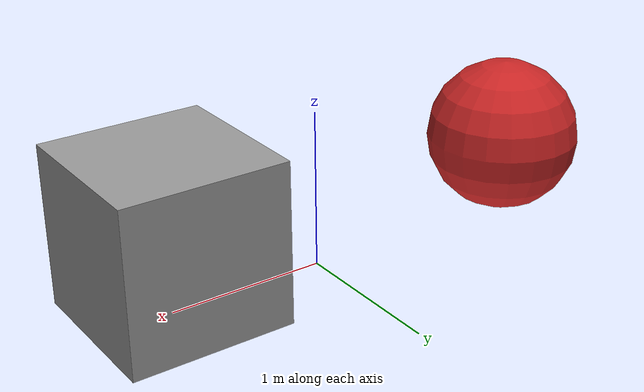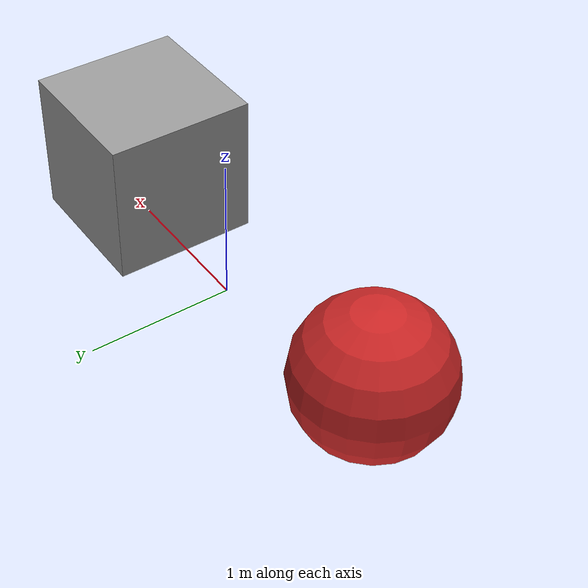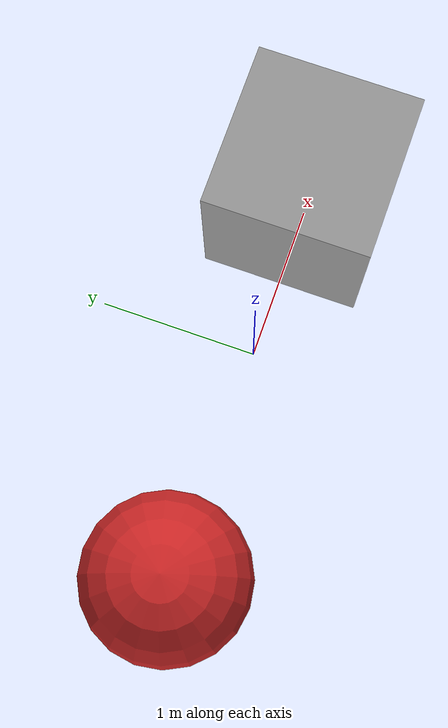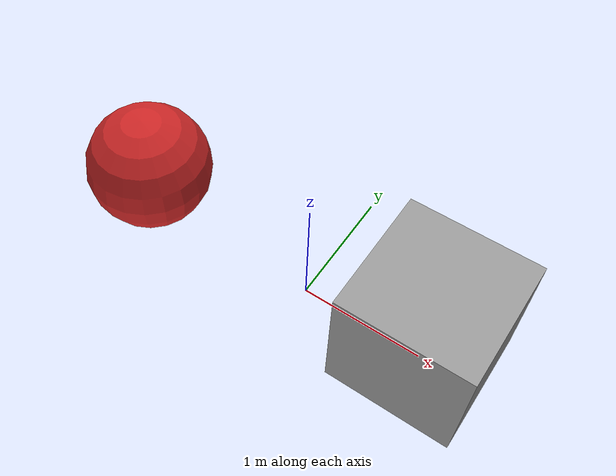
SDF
<?xml version="1.0" ?>
<sdf version="1.5">
  <world name="default">
    <physics type="ode">
      <gravity>0 0 0</gravity>
    </physics>
    <include>
      <uri>model://sun</uri>
    </include>

    <include>
      <uri>model://multilink</uri>
    </include>

  </world>
</sdf>

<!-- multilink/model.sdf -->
<sdf version="1.5">
  <model name="multilink">
    <pose>0 0 0.5 0 0 0</pose>
    <link name="box_link">
      <pose>1 0 0 0 0 0</pose>
      <collision name="collision">
        <geometry>
          <box>
            <size>1 1 1</size>
          </box>
        </geometry>
      </collision>
      <visual name="visual">
        <geometry>
          <box>
            <size>1 1 1</size>
          </box>
        </geometry>
        <material>
          <script>
            <uri>file://media/materials/scripts/gazebo.material</uri>
            <name>Gazebo/Grey</name>
          </script>
        </material>
      </visual>
    </link>
    <link name="sphere_link">
      <pose>-1.5 0 0 0 0 1.57</pose>
      <collision name="collision">
        <geometry>
          <sphere>
            <radius>0.5</radius>
          </sphere>
        </geometry>
      </collision>
      <visual name="visual">
        <geometry>
          <sphere>
            <radius>0.5</radius>
          </sphere>
        </geometry>
        <material>
          <script>
            <uri>file://media/materials/scripts/gazebo.material</uri>
            <name>Gazebo/Red</name>
          </script>
        </material>
      </visual>
    </link>
  </model>
</sdf>
